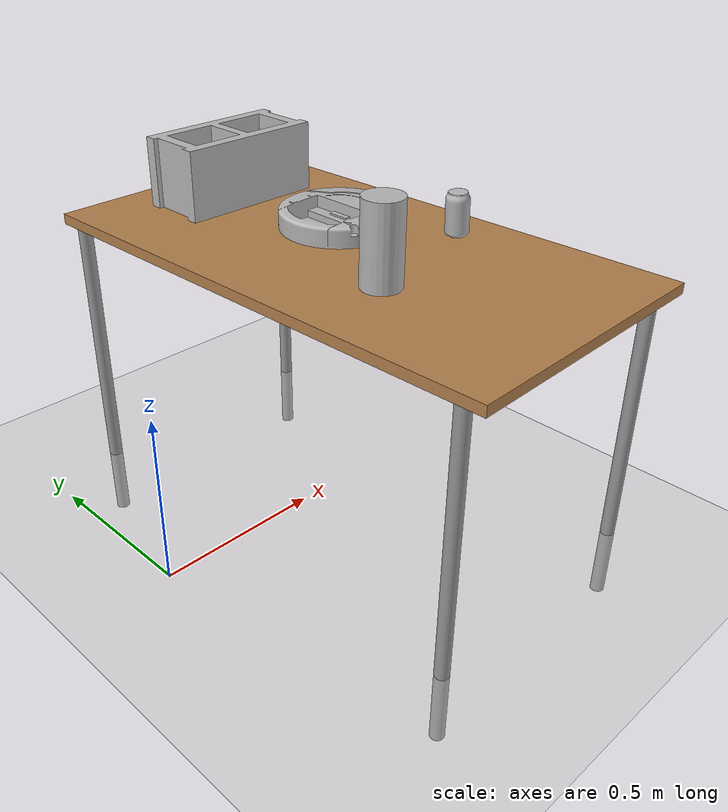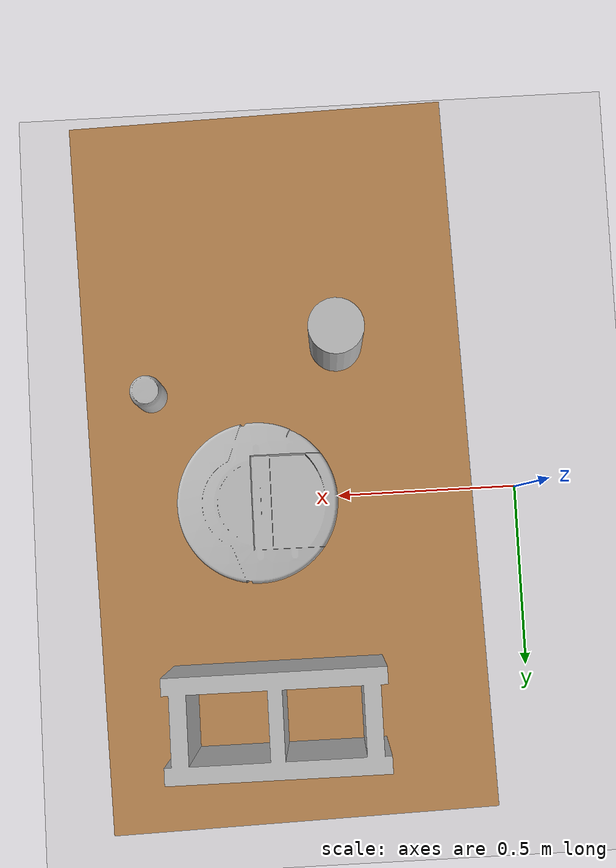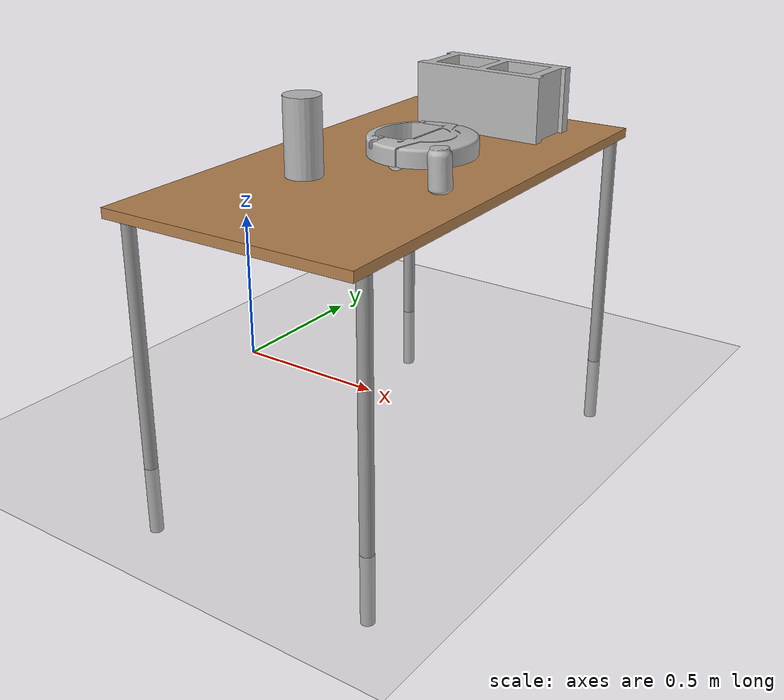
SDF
<sdf version="1.7">
 <world name="default">
  <light name="sun" type="directional">
   <pose>0 0 10 0 -0 0</pose>
   <diffuse>0.8 0.8 0.8 1</diffuse>
   <specular>0.2 0.2 0.2 1</specular>
   <attenuation>
    <range>1000</range>
    <constant>0.9</constant>
    <linear>0.01</linear>
    <quadratic>0.001</quadratic>
   </attenuation>
   <direction>-0.5 0.1 -0.9</direction>
   <spot><inner_angle>0</inner_angle><outer_angle>0</outer_angle><falloff>0</falloff></spot>
  </light>
  <model name="ground_plane">
   <static>1</static>
   <link name="link">
    <collision name="collision">
     <geometry><plane><normal>0 0 1</normal><size>100 100</size></plane></geometry>
     <surface><friction><ode><mu>100</mu><mu2>50</mu2></ode></friction></surface>
    </collision>
    <visual name="visual">
     <cast_shadows>0</cast_shadows>
     <geometry><plane><normal>0 0 1</normal><size>100 100</size></plane></geometry>
     <material>
      <script><uri>file://media/materials/scripts/gazebo.material</uri><name>Gazebo/Grey</name></script>
     </material>
    </visual>
   </link>
  </model>
  <gravity>0 0 -9.8</gravity>
  <magnetic_field>6e-06 2.3e-05 -4.2e-05</magnetic_field>
  <atmosphere type="adiabatic"/>
  <physics type="ode">
   <max_step_size>0.001</max_step_size>
   <real_time_factor>1</real_time_factor>
   <real_time_update_rate>1000</real_time_update_rate>
  </physics>
  <scene><ambient>0.7 0.7 0.7 1</ambient><background>0.7 0.7 0.7 1</background><shadows>1</shadows></scene>
  <audio><device>default</device></audio>
  <spherical_coordinates>
   <surface_model>EARTH_WGS84</surface_model>
   <latitude_deg>0</latitude_deg>
   <longitude_deg>0</longitude_deg>
   <elevation>0</elevation>
   <heading_deg>0</heading_deg>
  </spherical_coordinates>
  <model name="table">
   <static>1</static>
   <link name="link">
    <collision name="surface">
     <pose>0 0 1 0 -0 0</pose>
     <geometry><box><size>1.5 0.8 0.03</size></box></geometry>
     <surface><friction><ode><mu>0.6</mu><mu2>0.6</mu2></ode></friction></surface>
    </collision>
    <visual name="visual1">
     <pose>0 0 1 0 -0 0</pose>
     <geometry><box><size>1.5 0.8 0.03</size></box></geometry>
     <material>
      <script><uri>file://media/materials/scripts/gazebo.material</uri><name>Gazebo/Wood</name></script>
     </material>
    </visual>
    <collision name="front_left_leg">
     <pose>0.68 0.38 0.5 0 -0 0</pose>
     <geometry><cylinder><radius>0.02</radius><length>1</length></cylinder></geometry>
    </collision>
    <visual name="front_left_leg">
     <pose>0.68 0.38 0.5 0 -0 0</pose>
     <geometry><cylinder><radius>0.02</radius><length>1</length></cylinder></geometry>
     <material>
      <script><uri>file://media/materials/scripts/gazebo.material</uri><name>Gazebo/Grey</name></script>
     </material>
    </visual>
    <collision name="front_right_leg">
     <pose>0.68 -0.38 0.5 0 -0 0</pose>
     <geometry><cylinder><radius>0.02</radius><length>1</length></cylinder></geometry>
    </collision>
    <visual name="front_right_leg">
     <pose>0.68 -0.38 0.5 0 -0 0</pose>
     <geometry><cylinder><radius>0.02</radius><length>1</length></cylinder></geometry>
     <material>
      <script><uri>file://media/materials/scripts/gazebo.material</uri><name>Gazebo/Grey</name></script>
     </material>
    </visual>
    <collision name="back_right_leg">
     <pose>-0.68 -0.38 0.5 0 -0 0</pose>
     <geometry><cylinder><radius>0.02</radius><length>1</length></cylinder></geometry>
    </collision>
    <visual name="back_right_leg">
     <pose>-0.68 -0.38 0.5 0 -0 0</pose>
     <geometry><cylinder><radius>0.02</radius><length>1</length></cylinder></geometry>
     <material>
      <script><uri>file://media/materials/scripts/gazebo.material</uri><name>Gazebo/Grey</name></script>
     </material>
    </visual>
    <collision name="back_left_leg">
     <pose>-0.68 0.38 0.5 0 -0 0</pose>
     <geometry><cylinder><radius>0.02</radius><length>1</length></cylinder></geometry>
    </collision>
    <visual name="back_left_leg">
     <pose>-0.68 0.38 0.5 0 -0 0</pose>
     <geometry><cylinder><radius>0.02</radius><length>1</length></cylinder></geometry>
     <material>
      <script><uri>file://media/materials/scripts/gazebo.material</uri><name>Gazebo/Grey</name></script>
     </material>
    </visual>
   </link>
   <pose>0.628743 -0.054706 -0.216115 0 0 -1.54736</pose>
  </model>
  <plugin name="gazebo_link_attacher" filename="libgazebo_link_attacher.so"/>
  <plugin name="gazebo_ros_init" filename="libgazebo_ros_init.so"/>
  <plugin name="gazebo_ros_factory" filename="libgazebo_ros_factory.so"/>
  <model name="beer">
   <link name="link">
    <pose>0 0 0.115 0 -0 0</pose>
    <inertial>
     <mass>0.39</mass>
     <inertia><ixx>0.00058</ixx><ixy>0</ixy><ixz>0</ixz><iyy>0.00058</iyy><iyz>0</iyz><izz>0.00019</izz></inertia>
    </inertial>
    <collision name="collision">
     <geometry><cylinder><radius>0.055</radius><length>0.23</length></cylinder></geometry>
    </collision>
    <visual name="visual">
     <geometry><cylinder><radius>0.055</radius><length>0.23</length></cylinder></geometry>
     <material>
      <script>
       <uri>model://beer/materials/scripts</uri>
       <uri>model://beer/materials/textures</uri>
       <name>Beer/Diffuse</name>
      </script>
     </material>
    </visual>
   </link>
   <pose>0.498146 -0.294816 0.79889 1.9e-05 9.1e-05 -7.7e-05</pose>
  </model>
  <model name="cinder_block">
   <link name="link">
    <inertial>
     <pose>0 0 0.1016 0 -0 0</pose>
     <mass>5</mass>
     <inertia>
      <ixx>0.028705</ixx>
      <ixy>0</ixy>
      <iyy>0.073708</iyy>
      <ixz>0</ixz>
      <iyz>0</iyz>
      <izz>0.06908</izz>
     </inertia>
    </inertial>
    <visual name="visual">
     <geometry><mesh><uri>model://cinder_block/meshes/cinder_block.dae</uri></mesh></geometry>
    </visual>
    <collision name="left">
     <pose>0 -0.08465 0.1016 0 -0 0</pose>
     <geometry><box><size>0.43495 0.0339 0.2032</size></box></geometry>
     <surface>
      <contact><ode><max_vel>0.1</max_vel><min_depth>0.001</min_depth></ode></contact>
      <friction><ode><mu>1</mu><mu2>1</mu2></ode></friction>
     </surface>
    </collision>
    <collision name="right">
     <pose>0 0.08465 0.1016 0 -0 0</pose>
     <geometry><box><size>0.43495 0.0339 0.2032</size></box></geometry>
     <surface>
      <contact><ode><max_vel>0.1</max_vel><min_depth>0.001</min_depth></ode></contact>
      <friction><ode><mu>1</mu><mu2>1</mu2></ode></friction>
     </surface>
    </collision>
    <collision name="front">
     <pose>0.18625 0 0.1016 0 -0 0</pose>
     <geometry><box><size>0.0339 0.1354 0.203</size></box></geometry>
     <surface>
      <contact><ode><max_vel>0.1</max_vel><min_depth>0.001</min_depth></ode></contact>
      <friction><ode><mu>1</mu><mu2>1</mu2></ode></friction>
     </surface>
    </collision>
    <collision name="middle">
     <pose>0 0 0.1016 0 -0 0</pose>
     <geometry><box><size>0.0339 0.1354 0.203</size></box></geometry>
     <surface>
      <contact><ode><max_vel>0.1</max_vel><min_depth>0.001</min_depth></ode></contact>
      <friction><ode><mu>1</mu><mu2>1</mu2></ode></friction>
     </surface>
    </collision>
    <collision name="back">
     <pose>-0.18625 0 0.1016 0 -0 0</pose>
     <geometry><box><size>0.0339 0.1354 0.203</size></box></geometry>
     <surface>
      <contact><ode><max_vel>0.1</max_vel><min_depth>0.001</min_depth></ode></contact>
      <friction><ode><mu>1</mu><mu2>1</mu2></ode></friction>
     </surface>
    </collision>
   </link>
   <pose>0.653266 0.463352 0.798346 0 -0 0</pose>
  </model>
  <model name="coke_can">
   <link name="link">
    <inertial>
     <pose>0 0 0.06 0 -0 0</pose>
     <mass>0.39</mass>
     <inertia>
      <ixx>0.00055575</ixx>
      <ixy>0</ixy>
      <ixz>0</ixz>
      <iyy>0.00055575</iyy>
      <iyz>0</iyz>
      <izz>0.0001755</izz>
     </inertia>
    </inertial>
    <collision name="collision">
     <pose>0.003937 0.004724 -0.18 0 -0 0</pose>
     <geometry><mesh><uri>model://coke_can/meshes/coke_can.dae</uri></mesh></geometry>
     <surface>
      <friction><ode><mu>1</mu><mu2>1</mu2></ode></friction>
      <contact><ode><kp>1e+07</kp><kd>1</kd><min_depth>0.001</min_depth><max_vel>0.1</max_vel></ode></contact>
     </surface>
    </collision>
    <visual name="visual">
     <pose>0.003937 0.004724 -0.18 0 -0 0</pose>
     <geometry><mesh><uri>model://coke_can/meshes/coke_can.dae</uri></mesh></geometry>
    </visual>
   </link>
   <pose>0.89355 -0.204082 0.795857 -0.008507 -0.041416 -0.000472</pose>
  </model>
  <model name="create">
   <link name="base">
    <inertial>
     <pose>0.001453 -0.000453 0.029787 0 -0 0</pose>
     <inertia>
      <ixx>0.05864</ixx>
      <ixy>0.000124</ixy>
      <ixz>0.000615</ixz>
      <iyy>0.058786</iyy>
      <iyz>1.4e-05</iyz>
      <izz>1.53244</izz>
     </inertia>
     <mass>2.234</mass>
    </inertial>
    <collision name="base_collision">
     <pose>0 0 0.0478 0 -0 0</pose>
     <geometry><cylinder><radius>0.016495</radius><length>0.061163</length></cylinder></geometry>
    </collision>
    <visual name="base_visual">
     <pose>0 0 0.0478 0 -0 0</pose>
     <geometry><mesh><uri>model://create/meshes/create_body.dae</uri></mesh></geometry>
    </visual>
    <collision name="front_wheel_collision">
     <pose>0.13 0 0.017 -0 1.5707 1.5707</pose>
     <geometry><sphere><radius>0.018</radius></sphere></geometry>
     <surface>
      <friction><ode><mu>0</mu><mu2>0</mu2><fdir1>0 0 0</fdir1><slip1>0</slip1><slip2>0</slip2></ode></friction>
     </surface>
    </collision>
    <visual name="front_wheel_visual">
     <pose>0.13 0 0.017 -0 1.5707 1.5707</pose>
     <geometry><sphere><radius>0.009</radius></sphere></geometry>
    </visual>
    <collision name="rear_wheel_collision">
     <pose>-0.13 0 0.017 -0 1.5707 1.5707</pose>
     <geometry><sphere><radius>0.015</radius></sphere></geometry>
     <surface>
      <friction><ode><mu>0</mu><mu2>0</mu2><fdir1>0 0 0</fdir1><slip1>0</slip1><slip2>0</slip2></ode></friction>
     </surface>
    </collision>
    <visual name="rear_wheel_visual">
     <pose>-0.13 0 0.017 -0 1.5707 1.5707</pose>
     <geometry><sphere><radius>0.0075</radius></sphere></geometry>
    </visual>
    <sensor name="left_cliff_sensor" type="ray">
     <pose>0.07 0.14 0.027 0 1.57079 0</pose>
     <ray>
      <scan>
       <horizontal>
        <samples>1</samples>
        <resolution>1</resolution>
        <min_angle>0</min_angle>
        <max_angle>0</max_angle>
       </horizontal>
       <vertical><samples>1</samples><min_angle>0</min_angle><max_angle>0</max_angle></vertical>
      </scan>
      <range><min>0.01</min><max>0.04</max><resolution>0.1</resolution></range>
     </ray>
    </sensor>
    <sensor name="leftfront_cliff_sensor" type="ray">
     <pose>0.15 0.04 0.027 0 1.57079 0</pose>
     <ray>
      <scan>
       <horizontal>
        <samples>1</samples>
        <resolution>1</resolution>
        <min_angle>0</min_angle>
        <max_angle>0</max_angle>
       </horizontal>
       <vertical><samples>1</samples><min_angle>0</min_angle><max_angle>0</max_angle></vertical>
      </scan>
      <range><min>0.01</min><max>0.04</max><resolution>0.1</resolution></range>
     </ray>
    </sensor>
    <sensor name="right_cliff_sensor" type="ray">
     <pose>0.07 -0.14 0.027 0 1.57079 0</pose>
     <ray>
      <scan>
       <horizontal>
        <samples>1</samples>
        <resolution>1</resolution>
        <min_angle>0</min_angle>
        <max_angle>0</max_angle>
       </horizontal>
       <vertical><samples>1</samples><min_angle>0</min_angle><max_angle>0</max_angle></vertical>
      </scan>
      <range><min>0.01</min><max>0.04</max><resolution>0.1</resolution></range>
     </ray>
    </sensor>
    <sensor name="rightfront_cliff_sensor" type="ray">
     <pose>0.15 -0.04 0.027 0 1.57079 0</pose>
     <ray>
      <scan>
       <horizontal>
        <samples>1</samples>
        <resolution>1</resolution>
        <min_angle>0</min_angle>
        <max_angle>0</max_angle>
       </horizontal>
       <vertical><samples>1</samples><min_angle>0</min_angle><max_angle>0</max_angle></vertical>
      </scan>
      <range><min>0.01</min><max>0.04</max><resolution>0.1</resolution></range>
     </ray>
    </sensor>
    <sensor name="wall_sensor" type="ray">
     <pose>0.09 -0.12 0.059 0 0 -1</pose>
     <ray>
      <scan>
       <horizontal>
        <samples>1</samples>
        <resolution>1</resolution>
        <min_angle>0</min_angle>
        <max_angle>0</max_angle>
       </horizontal>
       <vertical><samples>1</samples><min_angle>0</min_angle><max_angle>0</max_angle></vertical>
      </scan>
      <range><min>0.016</min><max>0.04</max><resolution>0.1</resolution></range>
     </ray>
    </sensor>
   </link>
   <link name="left_wheel">
    <pose>0 0.13 0.032 0 -0 0</pose>
    <inertial>
     <inertia><ixx>0.001</ixx><ixy>0</ixy><ixz>0</ixz><iyy>0.001</iyy><iyz>0</iyz><izz>0.001</izz></inertia>
     <mass>0.01</mass>
    </inertial>
    <collision name="collision">
     <pose>0 0 0 -0 1.5707 1.5707</pose>
     <geometry><cylinder><radius>0.033</radius><length>0.023</length></cylinder></geometry>
     <surface>
      <friction><ode><mu>10</mu><mu2>10</mu2><fdir1>0 0 0</fdir1><slip1>0</slip1><slip2>0</slip2></ode></friction>
     </surface>
    </collision>
    <visual name="visual">
     <pose>0 0 0 -0 1.5707 1.5707</pose>
     <geometry><cylinder><radius>0.033</radius><length>0.023</length></cylinder></geometry>
    </visual>
   </link>
   <link name="right_wheel">
    <pose>0 -0.13 0.032 0 -0 0</pose>
    <inertial>
     <inertia><ixx>0.001</ixx><ixy>0</ixy><ixz>0</ixz><iyy>0.001</iyy><iyz>0</iyz><izz>0.001</izz></inertia>
     <mass>0.01</mass>
    </inertial>
    <collision name="collision">
     <pose>0 0 0 -0 1.5707 1.5707</pose>
     <geometry><cylinder><radius>0.033</radius><length>0.023</length></cylinder></geometry>
     <surface>
      <friction><ode><mu>10</mu><mu2>10</mu2><fdir1>0 0 0</fdir1><slip1>0</slip1><slip2>0</slip2></ode></friction>
     </surface>
    </collision>
    <visual name="visual">
     <pose>0 0 0 -0 1.5707 1.5707</pose>
     <geometry><cylinder><radius>0.033</radius><length>0.023</length></cylinder></geometry>
    </visual>
   </link>
   <joint name="left_wheel" type="revolute">
    <parent>base</parent>
    <child>left_wheel</child>
    <axis>
     <xyz expressed_in="__model__">0 1 0</xyz>
     <limit><lower>-1e+16</lower><upper>1e+16</upper></limit>
     <dynamics><spring_reference>0</spring_reference><spring_stiffness>0</spring_stiffness></dynamics>
    </axis>
   </joint>
   <joint name="right_wheel" type="revolute">
    <parent>base</parent>
    <child>right_wheel</child>
    <axis>
     <xyz expressed_in="__model__">0 1 0</xyz>
     <limit><lower>-1e+16</lower><upper>1e+16</upper></limit>
     <dynamics><spring_reference>0</spring_reference><spring_stiffness>0</spring_stiffness></dynamics>
    </axis>
   </joint>
   <pose>0.676189 0.032149 0.799821 6.9e-05 -0.000582 -0.004091</pose>
  </model>
 </world>
</sdf>
